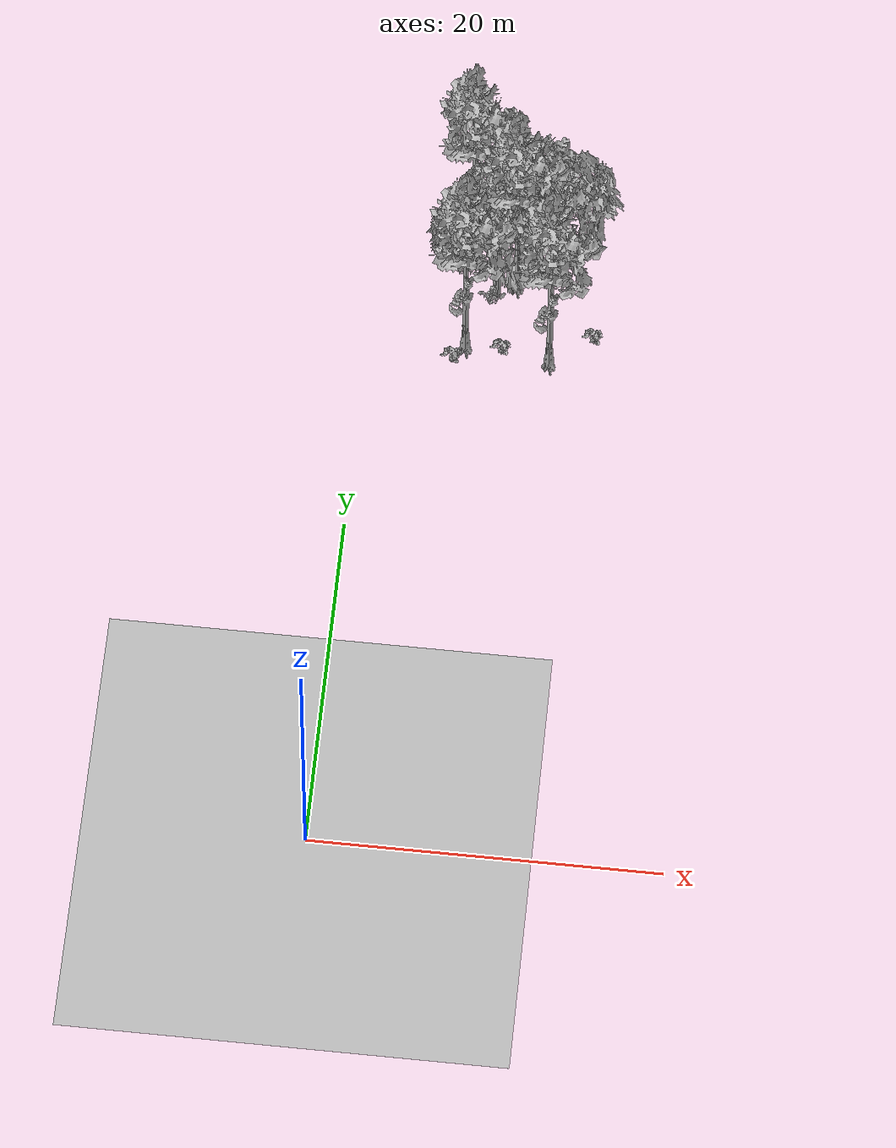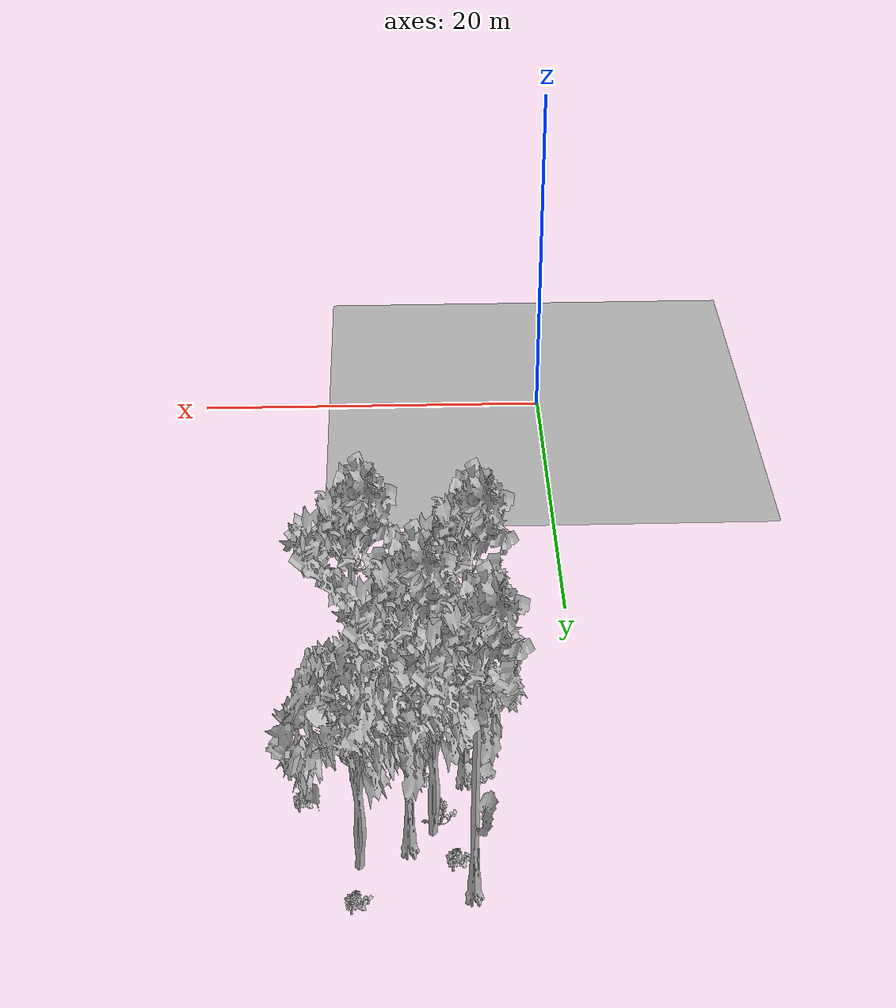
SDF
<sdf version="1.7">
 <world name="default">
  <model name="ground_plane">
   <static>1</static>
   <link name="link">
    <collision name="collision">
     <pose>-50 0 0 0 -0 0</pose>
     <geometry><plane><normal>0 0 1</normal><size>80 80</size></plane></geometry>
     <surface><contact><ode><min_depth>0.01</min_depth><max_vel>0</max_vel></ode></contact></surface>
    </collision>
    <visual name="grass">
     <cast_shadows>0</cast_shadows>
     <geometry>
      <mesh>
       <scale>0.46714285714285714 0.46714285714285714 0.1</scale>
       <uri>file://grass_plane/meshes/grass_plane.dae</uri>
      </mesh>
     </geometry>
    </visual>
   </link>
  </model>
  <model name="Tree 54">
   <static>1</static>
   <pose>5.51085011789764 39.44586581023708 0 1.57079 -0 0</pose>
   <link name="link">
    <collision name="collision">
     <geometry><mesh><scale>3.5 5 3.5</scale><uri>model://tree_9/meshes/tree_9.obj</uri></mesh></geometry>
    </collision>
    <visual name="visual">
     <geometry><mesh><scale>3.5 5 3.5</scale><uri>model://tree_9/meshes/tree_9.obj</uri></mesh></geometry>
    </visual>
   </link>
  </model>
  <model name="Tree 115">
   <static>1</static>
   <pose>5.683375146114095 32.29916721097079 0 1.57079 -0 0</pose>
   <link name="link">
    <collision name="collision">
     <geometry><mesh><scale>3.5 5 3.5</scale><uri>model://tree_9/meshes/tree_9.obj</uri></mesh></geometry>
    </collision>
    <visual name="visual">
     <geometry><mesh><scale>3.5 5 3.5</scale><uri>model://tree_9/meshes/tree_9.obj</uri></mesh></geometry>
    </visual>
   </link>
  </model>
  <model name="Tree 162">
   <static>1</static>
   <pose>8.260849543217468 36.59588510197986 0 1.57079 -0 0</pose>
   <link name="link">
    <collision name="collision">
     <geometry><mesh><scale>3.5 5 3.5</scale><uri>model://tree_9/meshes/tree_9.obj</uri></mesh></geometry>
    </collision>
    <visual name="visual">
     <geometry><mesh><scale>3.5 5 3.5</scale><uri>model://tree_9/meshes/tree_9.obj</uri></mesh></geometry>
    </visual>
   </link>
  </model>
  <model name="Tree 300">
   <static>1</static>
   <pose>7.109815903950654 35.9039802889546 0 1.57079 -0 0</pose>
   <link name="link">
    <collision name="collision">
     <geometry><mesh><scale>3.5 5 3.5</scale><uri>model://tree_2/meshes/tree_2.obj</uri></mesh></geometry>
    </collision>
    <visual name="visual">
     <geometry><mesh><scale>3.5 5 3.5</scale><uri>model://tree_2/meshes/tree_2.obj</uri></mesh></geometry>
    </visual>
   </link>
  </model>
  <model name="Tree 322">
   <static>1</static>
   <pose>10.598446508930266 31.688469753356557 0 1.57079 -0 0</pose>
   <link name="link">
    <collision name="collision">
     <geometry><mesh><scale>3.5 5 3.5</scale><uri>model://tree_9/meshes/tree_9.obj</uri></mesh></geometry>
    </collision>
    <visual name="visual">
     <geometry><mesh><scale>3.5 5 3.5</scale><uri>model://tree_9/meshes/tree_9.obj</uri></mesh></geometry>
    </visual>
   </link>
  </model>
  <model name="Tree 473">
   <static>1</static>
   <pose>10.35684797823108 37.85447664394947 0 1.57079 -0 0</pose>
   <link name="link">
    <collision name="collision">
     <geometry><mesh><scale>3.5 5 3.5</scale><uri>model://tree_2/meshes/tree_2.obj</uri></mesh></geometry>
    </collision>
    <visual name="visual">
     <geometry><mesh><scale>3.5 5 3.5</scale><uri>model://tree_2/meshes/tree_2.obj</uri></mesh></geometry>
    </visual>
   </link>
  </model>
  <model name="Bush 5">
   <static>1</static>
   <pose>10.529044661211117 39.93467187356826 0 1.57079 -0 0</pose>
   <link name="link">
    <collision name="collision">
     <geometry><mesh><scale>2 2 2</scale><uri>model://bush_2/meshes/bush_2.obj</uri></mesh></geometry>
     <surface><contact><collide_without_contact>false</collide_without_contact></contact></surface>
    </collision>
    <visual name="visual">
     <geometry><mesh><scale>2 2 2</scale><uri>model://bush_2/meshes/bush_2.obj</uri></mesh></geometry>
    </visual>
   </link>
  </model>
  <model name="Bush 19">
   <static>1</static>
   <pose>12.960929858085287 33.711119278485825 0 1.57079 -0 0</pose>
   <link name="link">
    <collision name="collision">
     <geometry><mesh><scale>2 2 2</scale><uri>model://bush_2/meshes/bush_2.obj</uri></mesh></geometry>
     <surface><contact><collide_without_contact>false</collide_without_contact></contact></surface>
    </collision>
    <visual name="visual">
     <geometry><mesh><scale>2 2 2</scale><uri>model://bush_2/meshes/bush_2.obj</uri></mesh></geometry>
    </visual>
   </link>
  </model>
  <model name="Bush 43">
   <static>1</static>
   <pose>6.914126575932961 35.38864968492487 0 1.57079 -0 0</pose>
   <link name="link">
    <collision name="collision">
     <geometry><mesh><scale>2 2 2</scale><uri>model://bush_4/meshes/bush_4.obj</uri></mesh></geometry>
     <surface><contact><collide_without_contact>false</collide_without_contact></contact></surface>
    </collision>
    <visual name="visual">
     <geometry><mesh><scale>2 2 2</scale><uri>model://bush_4/meshes/bush_4.obj</uri></mesh></geometry>
    </visual>
   </link>
  </model>
  <model name="Bush 385">
   <static>1</static>
   <pose>7.736719711262388 32.48303487062731 0 1.57079 -0 0</pose>
   <link name="link">
    <collision name="collision">
     <geometry><mesh><scale>2 2 2</scale><uri>model://bush_2/meshes/bush_2.obj</uri></mesh></geometry>
     <surface><contact><collide_without_contact>false</collide_without_contact></contact></surface>
    </collision>
    <visual name="visual">
     <geometry><mesh><scale>2 2 2</scale><uri>model://bush_2/meshes/bush_2.obj</uri></mesh></geometry>
    </visual>
   </link>
  </model>
  <model name="Bush 513">
   <static>1</static>
   <pose>6.1108934257098895 37.55507546131015 0 1.57079 -0 0</pose>
   <link name="link">
    <collision name="collision">
     <geometry><mesh><scale>2 2 2</scale><uri>model://bush_2/meshes/bush_2.obj</uri></mesh></geometry>
     <surface><contact><collide_without_contact>false</collide_without_contact></contact></surface>
    </collision>
    <visual name="visual">
     <geometry><mesh><scale>2 2 2</scale><uri>model://bush_2/meshes/bush_2.obj</uri></mesh></geometry>
    </visual>
   </link>
  </model>
  <model name="Bush 593">
   <static>1</static>
   <pose>4.952169661084078 31.659940671030398 0 1.57079 -0 0</pose>
   <link name="link">
    <collision name="collision">
     <geometry><mesh><scale>2 2 2</scale><uri>model://bush_2/meshes/bush_2.obj</uri></mesh></geometry>
     <surface><contact><collide_without_contact>false</collide_without_contact></contact></surface>
    </collision>
    <visual name="visual">
     <geometry><mesh><scale>2 2 2</scale><uri>model://bush_2/meshes/bush_2.obj</uri></mesh></geometry>
    </visual>
   </link>
  </model>
 </world>
</sdf>
